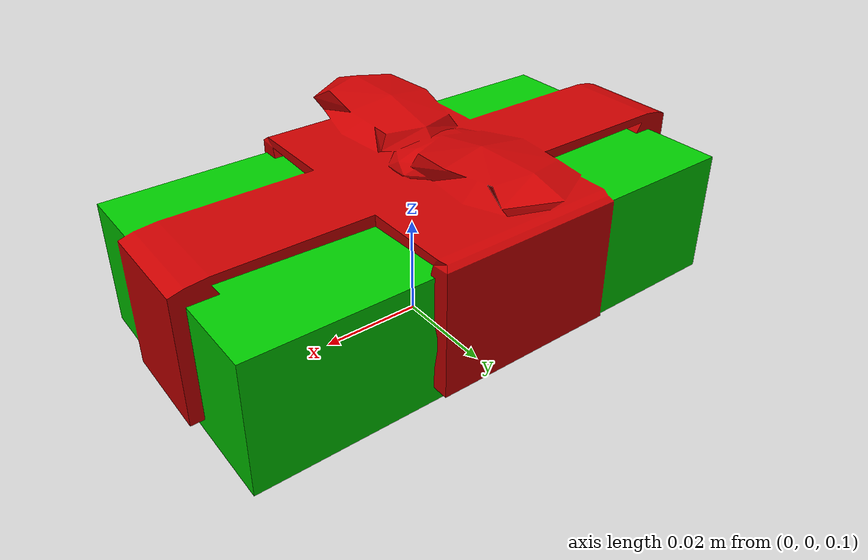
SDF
<?xml version="1.0" ?>
<sdf version="1.5">
  <model name="Rubik">
    <link name="link">
      <pose>0 0 0.115 0 0 0</pose>
      <inertial>
        <mass>0.390</mass>
        <inertia>
          <ixx>0.00058</ixx>
          <ixy>0</ixy>
          <ixz>0</ixz>
          <iyy>0.00058</iyy>
          <iyz>0</iyz>
          <izz>0.00019</izz>
        </inertia>
      </inertial>
      <collision name="collision">
        <geometry>
          <mesh>
            <uri>model://5-Box/meshes/Box.dae</uri>
          </mesh>
        </geometry>
      </collision>
      <visual name="visual">
        <geometry>
          <mesh>
            <uri>model://5-Box/meshes/Box.dae</uri>
          </mesh>
        </geometry>
        <material>
          <script>
            <uri>model://5-Box/materials/scripts</uri>
            <uri>model://5-Box/materials/textures</uri>
            <name>Box/Diffuse</name>
          </script>
        </material>
      </visual>
    </link>
  </model>
</sdf>
